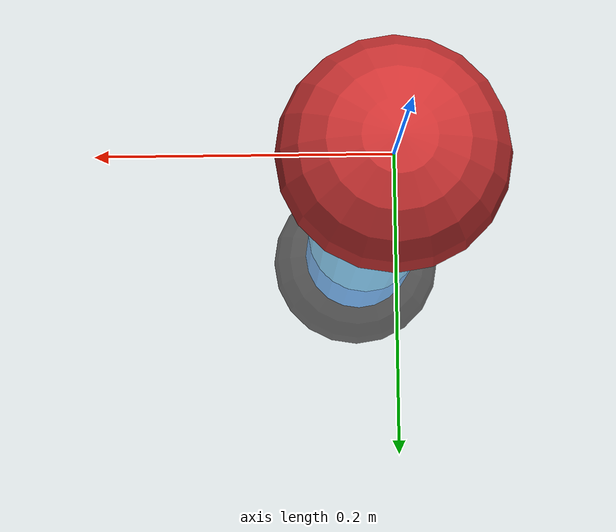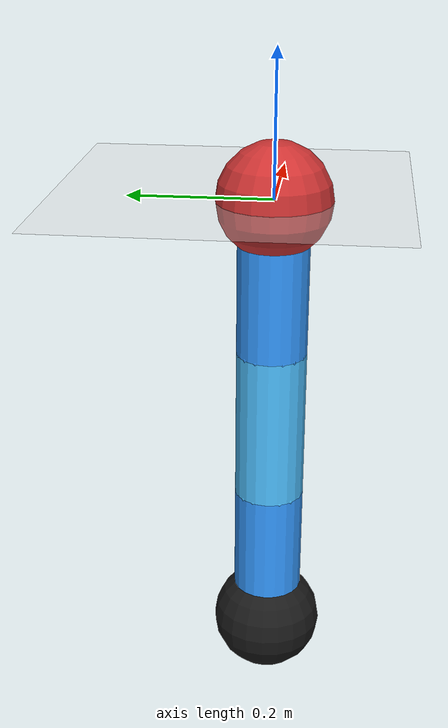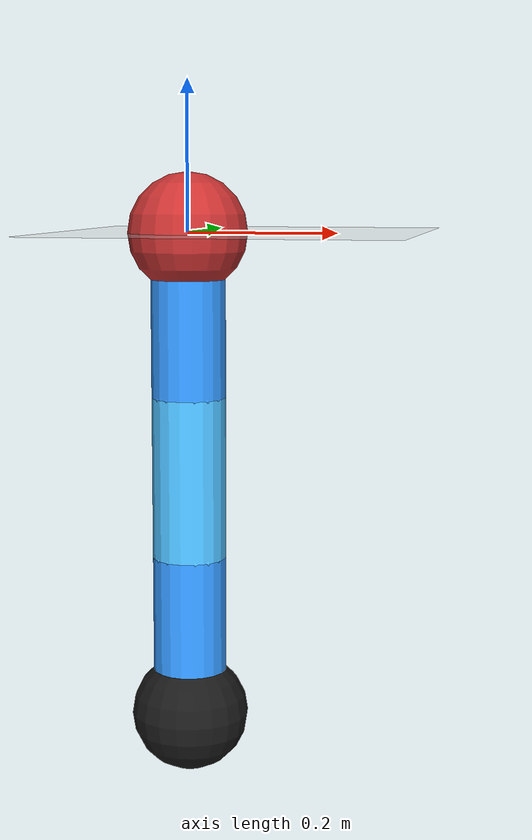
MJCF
<mujoco model="single_leg_3dof_posctl">
  <compiler angle="radian"/>

  <option integrator="RK4"/>

  <visual>
    <global offwidth="1280" offheight="720"/>
    <headlight ambient="0.4 0.4 0.4" diffuse="0.8 0.8 0.8" specular="0.2 0.2 0.2"/>
  </visual>

  <worldbody>
    <geom name="ground" size="5 5 0.1" type="plane" friction="1 0.1 0.1" rgba="0.9 0.9 0.9 1"/>

    <light name="top_light" pos="0 0 2.7" dir="0 0 -1" diffuse="0.9 0.9 0.9" specular="0.2 0.2 0.2"/>
    <body name="root" pos="0 0 0">
      <camera name="side_track_cam"
        pos="0 -1.7 0.0"
        euler="1.5708 0 0"
        mode="track"
        target="root"
        />
      <joint name="root_tx" pos="0 0 0" axis="1 0 0" type="slide"/>
      <joint name="root_tz" pos="0 0 0" axis="0 0 1" type="slide"/>
      <geom name="root_geom" size="0.08" rgba="0.8 0.2 0.2 1"/>
      <body name="link_0">
        <joint name="joint_0" pos="0 0 0" axis="0 1 0" limited="true" range="-2.0944 2.0944" armature="0.00018" damping="0.395946"/>
        <geom name="geom_0" size="0.05 0.11" pos="0 0 -0.11" type="capsule" friction="1 0.1 0.1" mass="1.605" rgba="0.2 0.6 1 1"/>
        <body name="link_1" pos="0 0 -0.22">
          <joint name="joint_1" pos="0 0 0" axis="0 1 0" limited="true" range="-2.0944 2.0944" armature="0.00018" damping="0.395946"/>
          <geom name="geom_1" size="0.05 0.11" pos="0 0 -0.11" type="capsule" friction="1 0.1 0.1" mass="1.605" rgba="0.3 0.75 1 1"/>
          <body name="link_2" pos="0 0 -0.22">
            <joint name="joint_2" pos="0 0 0" axis="0 1 0" limited="true" range="-2.0944 2.0944" armature="0.00018" damping="0.395946"/>
            <geom name="geom_2" size="0.05 0.11" pos="0 0 -0.11" type="capsule" friction="1 0.1 0.1" mass="1.605" rgba="0.2 0.6 1 1"/>
            <geom name="foot_sphere" size="0.08" pos="0 0 -0.22" friction="1 0.1 0.1" rgba="0.1 0.1 0.1 1"/>
          </body>
        </body>
      </body>
    </body>
  </worldbody>
  <actuator>
    <position name="mtr_0" joint="joint_0" gear="1" kp="30.0" ctrllimited="true" ctrlrange="-2.0944 2.0944" forcelimited="true" forcerange="-17.0 17.0"/>
    <position name="mtr_1" joint="joint_1" gear="1" kp="30.0" ctrllimited="true" ctrlrange="-2.0944 2.0944" forcelimited="true" forcerange="-17.0 17.0"/>
    <position name="mtr_2" joint="joint_2" gear="1" kp="30.0" ctrllimited="true" ctrlrange="-2.0944 2.0944" forcelimited="true" forcerange="-17.0 17.0"/>
  </actuator>

</mujoco>
